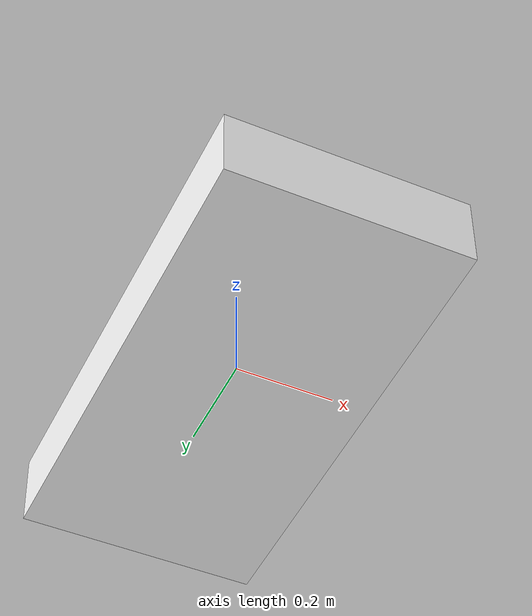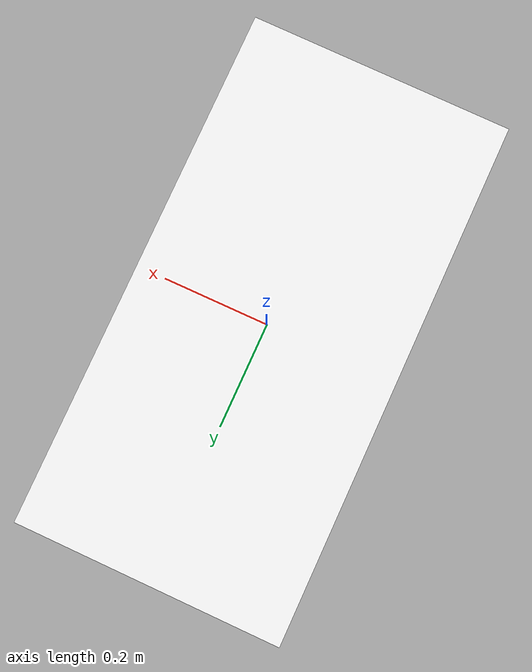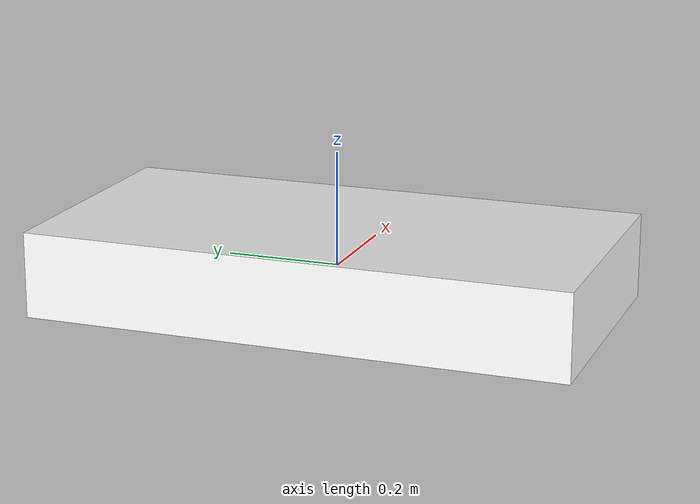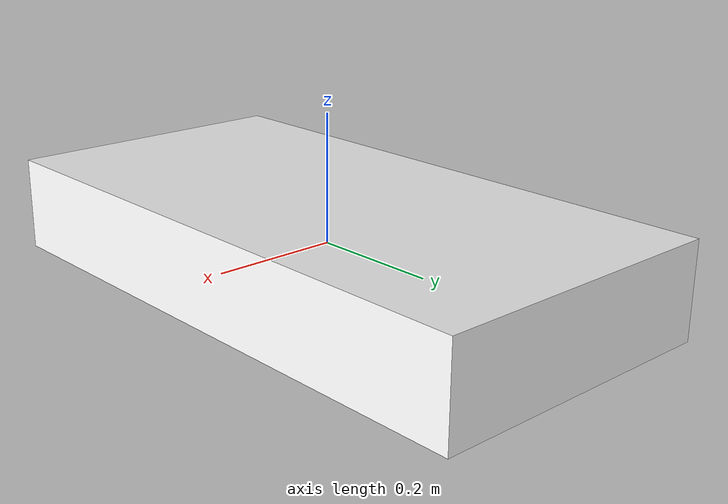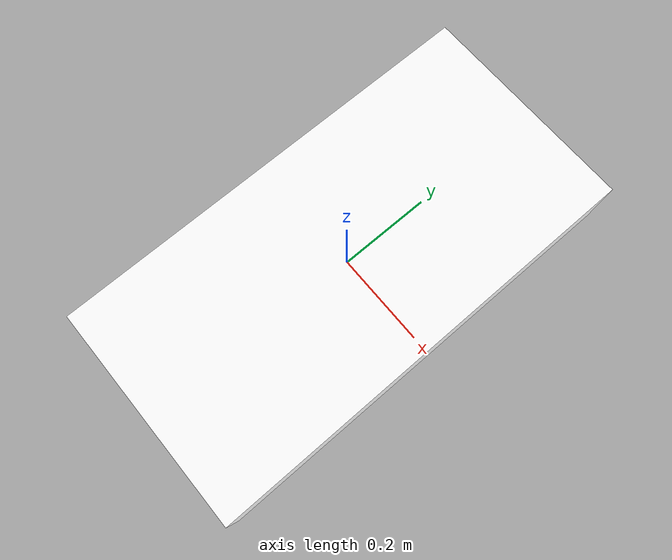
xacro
<?xml version="1.0"?>
<robot xmlns:xacro="http://www.ros.org/wiki/xacro">

    <material name="white">
        <color rgba="1 1 1 1"/>
    </material>

    <material name="orange">
        <color rgba="1 0.3 0.1 1"/>
    </material>

    <material name="blue">
        <color rgba="0.2 0.2 1 1"/>
    </material>

    <material name="black">
        <color rgba="0 0 0 1"/>
    </material>

    <link name="base_link">

    </link>

    <joint name="chassi_joint" type="fixed">
        <parent link="base_link"/>
        <child link="chassi"/>
        <origin xyz="0 0 0"/>
    </joint>

    <link name="chassi">
        <visual>
            <geometry>
                <box size="0.48 0.95 0.15"/>
            </geometry>
            <material name="white" />
        </visual>

    </link>
</robot>
